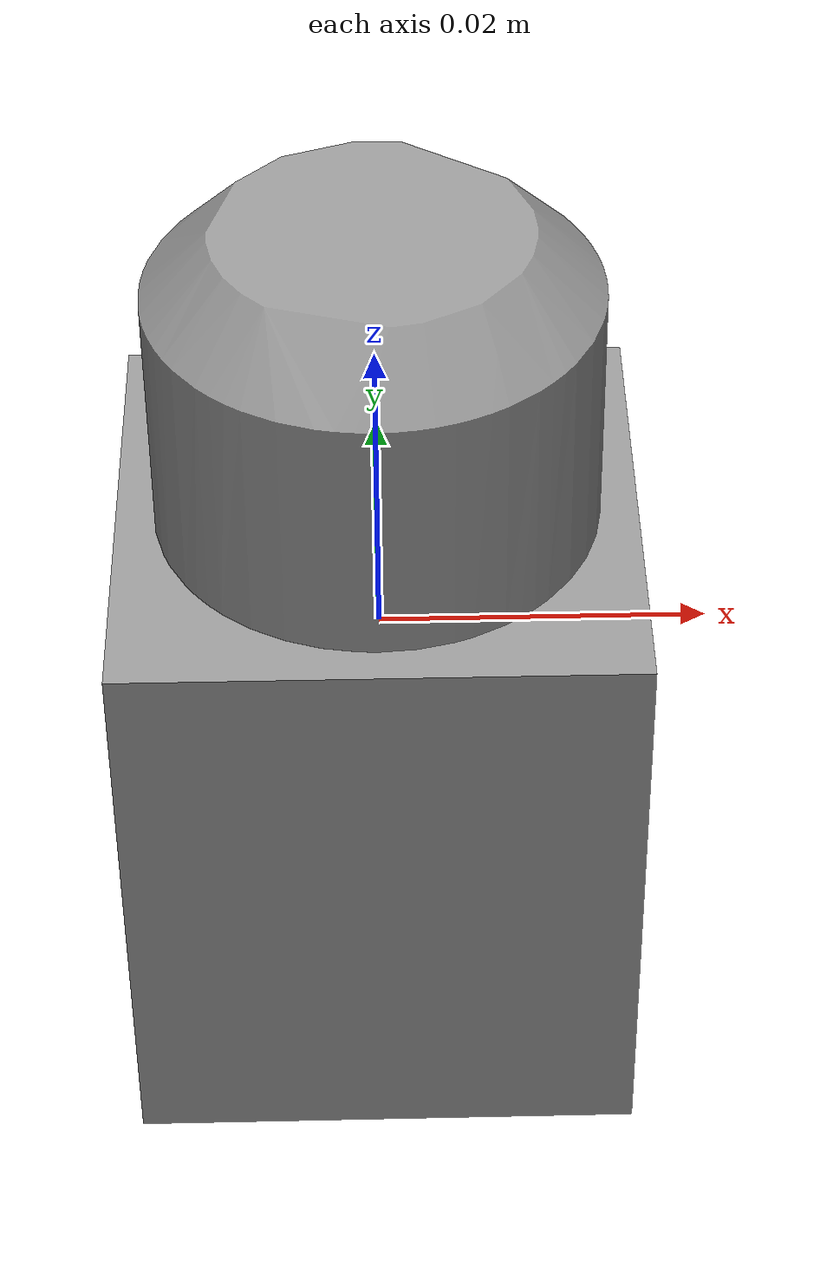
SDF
<?xml version="1.0"?>
<sdf version="1.4">
    <model name="lego_X1-Y1-Z2">
        <link name="link">
            <pose>-0.0 -0.0 -0.0 0 0 0</pose>
            <inertial>
                <pose>1.89496e-06 -3.89054e-07 -0.000475081 0 0 0</pose>
                <mass>0.00802771</mass>
                <inertia>
                    <ixx>3.14179e-06</ixx>
                    <ixy>-2.69251e-10</ixy>
                    <ixz>-4.52438e-10</ixz>
                    <iyy>3.14364e-06</iyy>
                    <iyz>3.14783e-10</iyz>
                    <izz>1.98462e-06</izz>
                </inertia>
            </inertial>
            <collision name="collision">
                <geometry>
                    <mesh>
                        <scale>1 1 1</scale>
                        <uri>model://lego_X1-Y1-Z2/meshes/X1-Y1-Z2.stl</uri>
                    </mesh>
                </geometry>

                <max_contacts>10</max_contacts>
                <surface>
                    <contact>
                        <ode>
                            <mu>0.1</mu>
                            <mu2>0.1</mu2>
                            <kp>1e15</kp>
                            <kd>1e13</kd>
                            <max_vel>0.01</max_vel>
                            <min_depth>0.001</min_depth>
                        </ode>
                    </contact>
                    <bounce>
                        <restitution_coefficient>0</restitution_coefficient>
                        <threshold>1e+06</threshold>
                    </bounce>
                    <friction>
                        <torsional>
                            <ode/>
                        </torsional>
                        <ode/>
                    </friction>
                </surface>
            </collision>
            <visual name="visual">
                <geometry>
                    <mesh>
                        <scale>1 1 1</scale>
                        <uri>model://lego_X1-Y1-Z2/meshes/X1-Y1-Z2.stl</uri>
                    </mesh>
                </geometry>
                <material>
                    <script>
                    <uri>file://media/materials/scripts/gazebo.material</uri>
                    <name>Gazebo/Grey</name>
                    </script>
                    <shader type="vertex">
                        <normal_map>__default__</normal_map>
                    </shader>
                    <ambient>0.3 0.3 0.3 1</ambient>
                    <diffuse>0.7 0.7 0.7 1</diffuse>
                    <specular>0.01 0.01 0.01 1</specular>
                    <emissive>0 0 0 1</emissive>
                </material>
            </visual>
        </link>
    </model>
</sdf>
